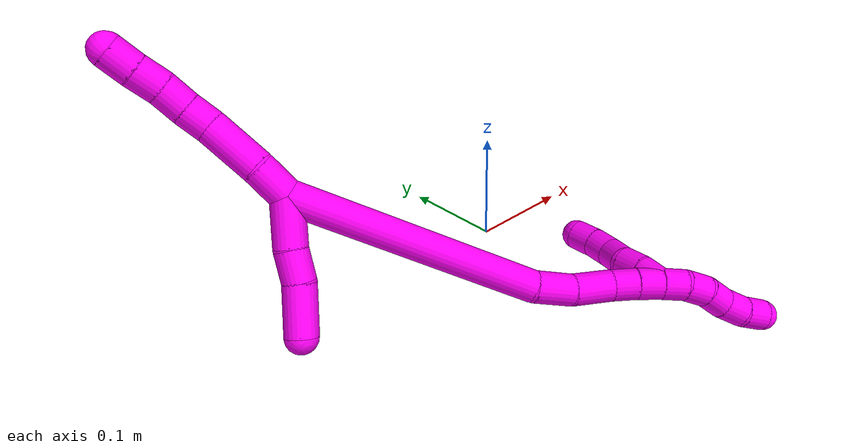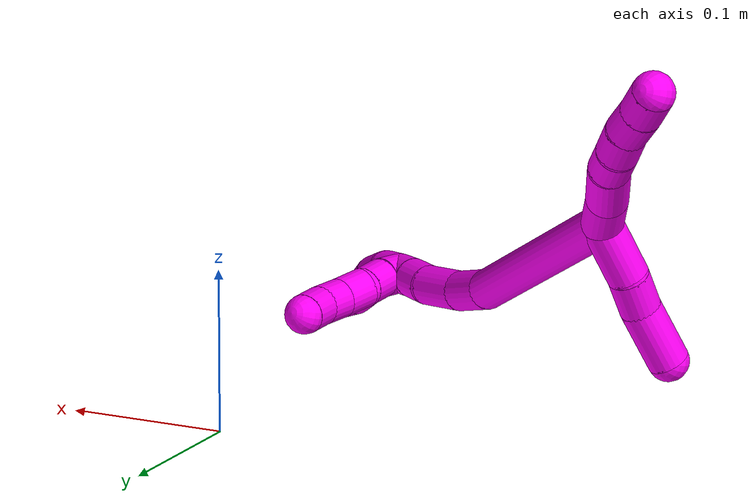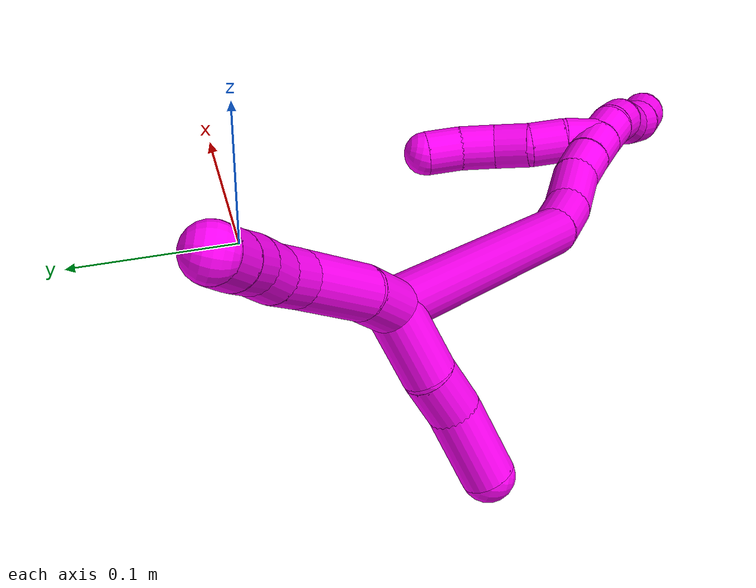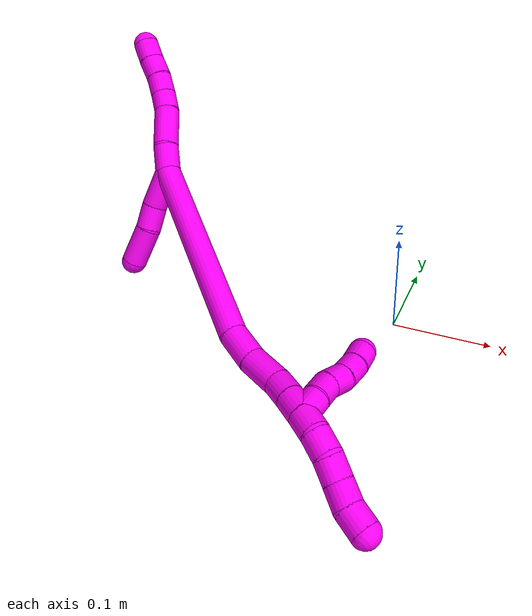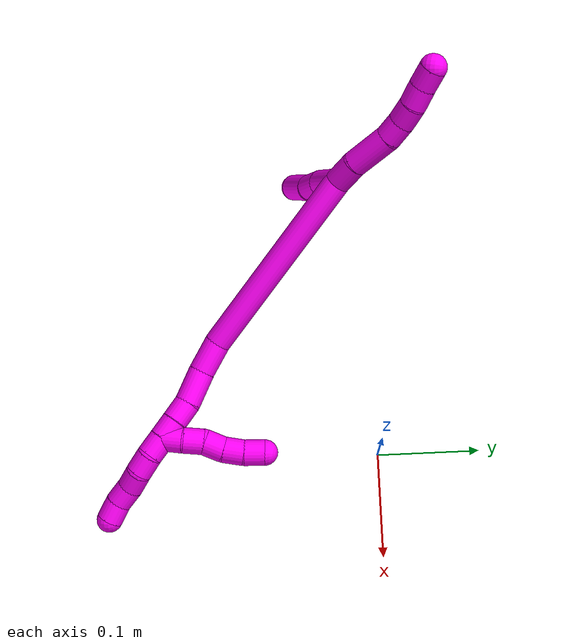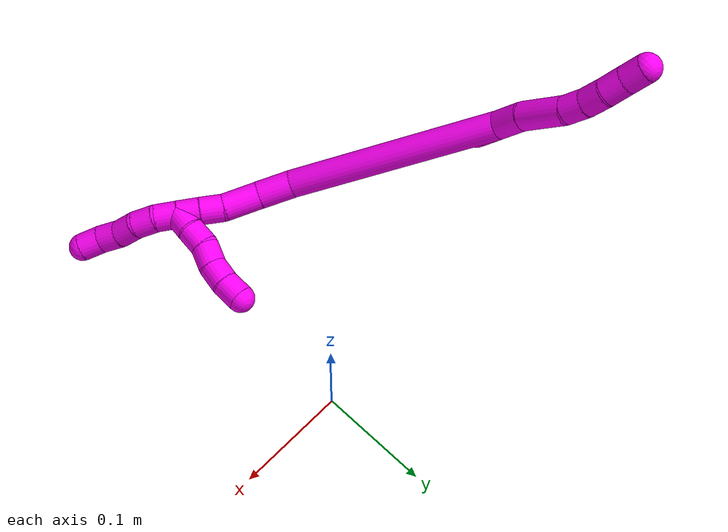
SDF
<sdf version="1.7">
 <world name="default">
  <model name="10">
   <static>0</static>
   <link name="10">
    <collision name="collision-cylinder-e_1_2_8">
     <pose>-0.003026 0.010001 -0.008905 -2.29833 -0.222242 0.487641</pose>
     <geometry><cylinder><radius>0.0125</radius><length>0.027457</length></cylinder></geometry>
     <surface>
      <friction><ode><mu>1.16</mu><mu2>1.16</mu2><slip1>0</slip1><slip2>0</slip2></ode></friction>
      <contact><ode><kp>1e+06</kp><kd>1</kd><max_vel>0</max_vel><min_depth>0.001</min_depth></ode></contact>
     </surface>
    </collision>
    <visual name="visual-cylinder-e_1_2_8">
     <pose>-0.003026 0.010001 -0.008905 -2.29833 -0.222242 0.487641</pose>
     <geometry><cylinder><radius>0.0125</radius><length>0.027457</length></cylinder></geometry>
     <material><ambient>1 0 0.964706 1</ambient></material>
    </visual>
    <collision name="collision-cylinder-e_2_8_9">
     <pose>-0.012007 0.032497 -0.033611 -2.47246 -0.287428 0.788916</pose>
     <geometry><cylinder><radius>0.0125</radius><length>0.042011</length></cylinder></geometry>
     <surface>
      <friction><ode><mu>1.16</mu><mu2>1.16</mu2><slip1>0</slip1><slip2>0</slip2></ode></friction>
      <contact><ode><kp>1e+06</kp><kd>1</kd><max_vel>0</max_vel><min_depth>0.001</min_depth></ode></contact>
     </surface>
    </collision>
    <visual name="visual-cylinder-e_2_8_9">
     <pose>-0.012007 0.032497 -0.033611 -2.47246 -0.287428 0.788916</pose>
     <geometry><cylinder><radius>0.0125</radius><length>0.042011</length></cylinder></geometry>
     <material><ambient>1 0 0.964706 1</ambient></material>
    </visual>
    <collision name="collision-cylinder-e_3_9_10">
     <pose>-0.021575 0.052067 -0.05553 -2.2838 -0.368596 0.774169</pose>
     <geometry><cylinder><radius>0.0125</radius><length>0.020055</length></cylinder></geometry>
     <surface>
      <friction><ode><mu>1.16</mu><mu2>1.16</mu2><slip1>0</slip1><slip2>0</slip2></ode></friction>
      <contact><ode><kp>1e+06</kp><kd>1</kd><max_vel>0</max_vel><min_depth>0.001</min_depth></ode></contact>
     </surface>
    </collision>
    <visual name="visual-cylinder-e_3_9_10">
     <pose>-0.021575 0.052067 -0.05553 -2.2838 -0.368596 0.774169</pose>
     <geometry><cylinder><radius>0.0125</radius><length>0.020055</length></cylinder></geometry>
     <material><ambient>1 0 0.964706 1</ambient></material>
    </visual>
    <collision name="collision-cylinder-e_4_10_11">
     <pose>-0.028052 0.06725 -0.066989 -2.15329 -0.28687 0.523855</pose>
     <geometry><cylinder><radius>0.0125</radius><length>0.020244</length></cylinder></geometry>
     <surface>
      <friction><ode><mu>1.16</mu><mu2>1.16</mu2><slip1>0</slip1><slip2>0</slip2></ode></friction>
      <contact><ode><kp>1e+06</kp><kd>1</kd><max_vel>0</max_vel><min_depth>0.001</min_depth></ode></contact>
     </surface>
    </collision>
    <visual name="visual-cylinder-e_4_10_11">
     <pose>-0.028052 0.06725 -0.066989 -2.15329 -0.28687 0.523855</pose>
     <geometry><cylinder><radius>0.0125</radius><length>0.020244</length></cylinder></geometry>
     <material><ambient>1 0 0.964706 1</ambient></material>
    </visual>
    <collision name="collision-cylinder-e_5_11_12">
     <pose>-0.03496 0.083463 -0.076734 -2.06859 -0.41316 0.677632</pose>
     <geometry><cylinder><radius>0.0125</radius><length>0.020145</length></cylinder></geometry>
     <surface>
      <friction><ode><mu>1.16</mu><mu2>1.16</mu2><slip1>0</slip1><slip2>0</slip2></ode></friction>
      <contact><ode><kp>1e+06</kp><kd>1</kd><max_vel>0</max_vel><min_depth>0.001</min_depth></ode></contact>
     </surface>
    </collision>
    <visual name="visual-cylinder-e_5_11_12">
     <pose>-0.03496 0.083463 -0.076734 -2.06859 -0.41316 0.677632</pose>
     <geometry><cylinder><radius>0.0125</radius><length>0.020145</length></cylinder></geometry>
     <material><ambient>1 0 0.964706 1</ambient></material>
    </visual>
    <collision name="collision-cylinder-e_6_12_6">
     <pose>-0.042443 0.099718 -0.085895 -2.09904 -0.34948 0.596507</pose>
     <geometry><cylinder><radius>0.0125</radius><length>0.020088</length></cylinder></geometry>
     <surface>
      <friction><ode><mu>1.16</mu><mu2>1.16</mu2><slip1>0</slip1><slip2>0</slip2></ode></friction>
      <contact><ode><kp>1e+06</kp><kd>1</kd><max_vel>0</max_vel><min_depth>0.001</min_depth></ode></contact>
     </surface>
    </collision>
    <visual name="visual-cylinder-e_6_12_6">
     <pose>-0.042443 0.099718 -0.085895 -2.09904 -0.34948 0.596507</pose>
     <geometry><cylinder><radius>0.0125</radius><length>0.020088</length></cylinder></geometry>
     <material><ambient>1 0 0.964706 1</ambient></material>
    </visual>
    <collision name="collision-cylinder-e_1_2_13">
     <pose>-0.00881 -0.011218 0.011889 0.756402 -0.494351 -0.199852</pose>
     <geometry><cylinder><radius>0.0125</radius><length>0.037139</length></cylinder></geometry>
     <surface>
      <friction><ode><mu>1.16</mu><mu2>1.16</mu2><slip1>0</slip1><slip2>0</slip2></ode></friction>
      <contact><ode><kp>1e+06</kp><kd>1</kd><max_vel>0</max_vel><min_depth>0.001</min_depth></ode></contact>
     </surface>
    </collision>
    <visual name="visual-cylinder-e_1_2_13">
     <pose>-0.00881 -0.011218 0.011889 0.756402 -0.494351 -0.199852</pose>
     <geometry><cylinder><radius>0.0125</radius><length>0.037139</length></cylinder></geometry>
     <material><ambient>1 0 0.964706 1</ambient></material>
    </visual>
    <collision name="collision-cylinder-e_2_13_14">
     <pose>-0.021371 -0.030521 0.031985 0.777827 -0.314713 -0.129857</pose>
     <geometry><cylinder><radius>0.0125</radius><length>0.024232</length></cylinder></geometry>
     <surface>
      <friction><ode><mu>1.16</mu><mu2>1.16</mu2><slip1>0</slip1><slip2>0</slip2></ode></friction>
      <contact><ode><kp>1e+06</kp><kd>1</kd><max_vel>0</max_vel><min_depth>0.001</min_depth></ode></contact>
     </surface>
    </collision>
    <visual name="visual-cylinder-e_2_13_14">
     <pose>-0.021371 -0.030521 0.031985 0.777827 -0.314713 -0.129857</pose>
     <geometry><cylinder><radius>0.0125</radius><length>0.024232</length></cylinder></geometry>
     <material><ambient>1 0 0.964706 1</ambient></material>
    </visual>
    <collision name="collision-cylinder-e_3_14_5">
     <pose>-0.034738 -0.050048 0.052426 0.751996 -0.521178 -0.209766</pose>
     <geometry><cylinder><radius>0.0125</radius><length>0.03863</length></cylinder></geometry>
     <surface>
      <friction><ode><mu>1.16</mu><mu2>1.16</mu2><slip1>0</slip1><slip2>0</slip2></ode></friction>
      <contact><ode><kp>1e+06</kp><kd>1</kd><max_vel>0</max_vel><min_depth>0.001</min_depth></ode></contact>
     </surface>
    </collision>
    <visual name="visual-cylinder-e_3_14_5">
     <pose>-0.034738 -0.050048 0.052426 0.751996 -0.521178 -0.209766</pose>
     <geometry><cylinder><radius>0.0125</radius><length>0.03863</length></cylinder></geometry>
     <material><ambient>1 0 0.964706 1</ambient></material>
    </visual>
    <collision name="collision-cylinder-e_1_2_15">
     <pose>0.058609 -0.056602 0.052497 0.823 0.649355 0.291699</pose>
     <geometry><cylinder><radius>0.0125</radius><length>0.193853</length></cylinder></geometry>
     <surface>
      <friction><ode><mu>1.16</mu><mu2>1.16</mu2><slip1>0</slip1><slip2>0</slip2></ode></friction>
      <contact><ode><kp>1e+06</kp><kd>1</kd><max_vel>0</max_vel><min_depth>0.001</min_depth></ode></contact>
     </surface>
    </collision>
    <visual name="visual-cylinder-e_1_2_15">
     <pose>0.058609 -0.056602 0.052497 0.823 0.649355 0.291699</pose>
     <geometry><cylinder><radius>0.0125</radius><length>0.193853</length></cylinder></geometry>
     <material><ambient>1 0 0.964706 1</ambient></material>
    </visual>
    <collision name="collision-cylinder-e_2_15_16">
     <pose>0.129508 -0.121358 0.110938 0.940968 0.883402 0.472007</pose>
     <geometry><cylinder><radius>0.0125</radius><length>0.031805</length></cylinder></geometry>
     <surface>
      <friction><ode><mu>1.16</mu><mu2>1.16</mu2><slip1>0</slip1><slip2>0</slip2></ode></friction>
      <contact><ode><kp>1e+06</kp><kd>1</kd><max_vel>0</max_vel><min_depth>0.001</min_depth></ode></contact>
     </surface>
    </collision>
    <visual name="visual-cylinder-e_2_15_16">
     <pose>0.129508 -0.121358 0.110938 0.940968 0.883402 0.472007</pose>
     <geometry><cylinder><radius>0.0125</radius><length>0.031805</length></cylinder></geometry>
     <material><ambient>1 0 0.964706 1</ambient></material>
    </visual>
    <collision name="collision-cylinder-e_3_16_17">
     <pose>0.156422 -0.13643 0.121004 1.03337 1.06739 0.64781</pose>
     <geometry><cylinder><radius>0.0125</radius><length>0.033386</length></cylinder></geometry>
     <surface>
      <friction><ode><mu>1.16</mu><mu2>1.16</mu2><slip1>0</slip1><slip2>0</slip2></ode></friction>
      <contact><ode><kp>1e+06</kp><kd>1</kd><max_vel>0</max_vel><min_depth>0.001</min_depth></ode></contact>
     </surface>
    </collision>
    <visual name="visual-cylinder-e_3_16_17">
     <pose>0.156422 -0.13643 0.121004 1.03337 1.06739 0.64781</pose>
     <geometry><cylinder><radius>0.0125</radius><length>0.033386</length></cylinder></geometry>
     <material><ambient>1 0 0.964706 1</ambient></material>
    </visual>
    <collision name="collision-cylinder-e_4_17_18">
     <pose>0.180141 -0.146287 0.129341 0.608954 1.05659 0.362778</pose>
     <geometry><cylinder><radius>0.0125</radius><length>0.020895</length></cylinder></geometry>
     <surface>
      <friction><ode><mu>1.16</mu><mu2>1.16</mu2><slip1>0</slip1><slip2>0</slip2></ode></friction>
      <contact><ode><kp>1e+06</kp><kd>1</kd><max_vel>0</max_vel><min_depth>0.001</min_depth></ode></contact>
     </surface>
    </collision>
    <visual name="visual-cylinder-e_4_17_18">
     <pose>0.180141 -0.146287 0.129341 0.608954 1.05659 0.362778</pose>
     <geometry><cylinder><radius>0.0125</radius><length>0.020895</length></cylinder></geometry>
     <material><ambient>1 0 0.964706 1</ambient></material>
    </visual>
    <collision name="collision-cylinder-e_5_18_1">
     <pose>0.197665 -0.15255 0.137861 0.657503 0.997686 0.367504</pose>
     <geometry><cylinder><radius>0.0125</radius><length>0.020061</length></cylinder></geometry>
     <surface>
      <friction><ode><mu>1.16</mu><mu2>1.16</mu2><slip1>0</slip1><slip2>0</slip2></ode></friction>
      <contact><ode><kp>1e+06</kp><kd>1</kd><max_vel>0</max_vel><min_depth>0.001</min_depth></ode></contact>
     </surface>
    </collision>
    <visual name="visual-cylinder-e_5_18_1">
     <pose>0.197665 -0.15255 0.137861 0.657503 0.997686 0.367504</pose>
     <geometry><cylinder><radius>0.0125</radius><length>0.020061</length></cylinder></geometry>
     <material><ambient>1 0 0.964706 1</ambient></material>
    </visual>
    <collision name="collision-cylinder-e_1_1_19">
     <pose>0.20472 -0.157356 0.132373 2.99149 -0.137752 -1.48472</pose>
     <geometry><cylinder><radius>0.0125</radius><length>0.02</length></cylinder></geometry>
     <surface>
      <friction><ode><mu>1.16</mu><mu2>1.16</mu2><slip1>0</slip1><slip2>0</slip2></ode></friction>
      <contact><ode><kp>1e+06</kp><kd>1</kd><max_vel>0</max_vel><min_depth>0.001</min_depth></ode></contact>
     </surface>
    </collision>
    <visual name="visual-cylinder-e_1_1_19">
     <pose>0.20472 -0.157356 0.132373 2.99149 -0.137752 -1.48472</pose>
     <geometry><cylinder><radius>0.0125</radius><length>0.02</length></cylinder></geometry>
     <material><ambient>1 0 0.964706 1</ambient></material>
    </visual>
    <collision name="collision-cylinder-e_2_19_20">
     <pose>0.200904 -0.161333 0.113208 2.88127 -0.246707 -1.51651</pose>
     <geometry><cylinder><radius>0.0125</radius><length>0.02</length></cylinder></geometry>
     <surface>
      <friction><ode><mu>1.16</mu><mu2>1.16</mu2><slip1>0</slip1><slip2>0</slip2></ode></friction>
      <contact><ode><kp>1e+06</kp><kd>1</kd><max_vel>0</max_vel><min_depth>0.001</min_depth></ode></contact>
     </surface>
    </collision>
    <visual name="visual-cylinder-e_2_19_20">
     <pose>0.200904 -0.161333 0.113208 2.88127 -0.246707 -1.51651</pose>
     <geometry><cylinder><radius>0.0125</radius><length>0.02</length></cylinder></geometry>
     <material><ambient>1 0 0.964706 1</ambient></material>
    </visual>
    <collision name="collision-cylinder-e_3_20_21">
     <pose>0.198426 -0.168323 0.094904 2.67553 -0.003612 -0.01522</pose>
     <geometry><cylinder><radius>0.0125</radius><length>0.02</length></cylinder></geometry>
     <surface>
      <friction><ode><mu>1.16</mu><mu2>1.16</mu2><slip1>0</slip1><slip2>0</slip2></ode></friction>
      <contact><ode><kp>1e+06</kp><kd>1</kd><max_vel>0</max_vel><min_depth>0.001</min_depth></ode></contact>
     </surface>
    </collision>
    <visual name="visual-cylinder-e_3_20_21">
     <pose>0.198426 -0.168323 0.094904 2.67553 -0.003612 -0.01522</pose>
     <geometry><cylinder><radius>0.0125</radius><length>0.02</length></cylinder></geometry>
     <material><ambient>1 0 0.964706 1</ambient></material>
    </visual>
    <collision name="collision-cylinder-e_4_21_22">
     <pose>0.196928 -0.175277 0.076389 2.8902 -0.146723 -1.05357</pose>
     <geometry><cylinder><radius>0.0125</radius><length>0.02</length></cylinder></geometry>
     <surface>
      <friction><ode><mu>1.16</mu><mu2>1.16</mu2><slip1>0</slip1><slip2>0</slip2></ode></friction>
      <contact><ode><kp>1e+06</kp><kd>1</kd><max_vel>0</max_vel><min_depth>0.001</min_depth></ode></contact>
     </surface>
    </collision>
    <visual name="visual-cylinder-e_4_21_22">
     <pose>0.196928 -0.175277 0.076389 2.8902 -0.146723 -1.05357</pose>
     <geometry><cylinder><radius>0.0125</radius><length>0.02</length></cylinder></geometry>
     <material><ambient>1 0 0.964706 1</ambient></material>
    </visual>
    <collision name="collision-cylinder-e_5_22_4">
     <pose>0.192548 -0.179445 0.057397 2.96213 -0.296136 -2.05604</pose>
     <geometry><cylinder><radius>0.0125</radius><length>0.02</length></cylinder></geometry>
     <surface>
      <friction><ode><mu>1.16</mu><mu2>1.16</mu2><slip1>0</slip1><slip2>0</slip2></ode></friction>
      <contact><ode><kp>1e+06</kp><kd>1</kd><max_vel>0</max_vel><min_depth>0.001</min_depth></ode></contact>
     </surface>
    </collision>
    <visual name="visual-cylinder-e_5_22_4">
     <pose>0.192548 -0.179445 0.057397 2.96213 -0.296136 -2.05604</pose>
     <geometry><cylinder><radius>0.0125</radius><length>0.02</length></cylinder></geometry>
     <material><ambient>1 0 0.964706 1</ambient></material>
    </visual>
    <collision name="collision-cylinder-e_1_1_23">
     <pose>0.214198 -0.159566 0.146714 0.681918 0.945009 0.358808</pose>
     <geometry><cylinder><radius>0.0125</radius><length>0.02</length></cylinder></geometry>
     <surface>
      <friction><ode><mu>1.16</mu><mu2>1.16</mu2><slip1>0</slip1><slip2>0</slip2></ode></friction>
      <contact><ode><kp>1e+06</kp><kd>1</kd><max_vel>0</max_vel><min_depth>0.001</min_depth></ode></contact>
     </surface>
    </collision>
    <visual name="visual-cylinder-e_1_1_23">
     <pose>0.214198 -0.159566 0.146714 0.681918 0.945009 0.358808</pose>
     <geometry><cylinder><radius>0.0125</radius><length>0.02</length></cylinder></geometry>
     <material><ambient>1 0 0.964706 1</ambient></material>
    </visual>
    <collision name="collision-cylinder-e_2_23_24">
     <pose>0.228915 -0.16909 0.15598 0.890542 0.722441 0.356764</pose>
     <geometry><cylinder><radius>0.0125</radius><length>0.02</length></cylinder></geometry>
     <surface>
      <friction><ode><mu>1.16</mu><mu2>1.16</mu2><slip1>0</slip1><slip2>0</slip2></ode></friction>
      <contact><ode><kp>1e+06</kp><kd>1</kd><max_vel>0</max_vel><min_depth>0.001</min_depth></ode></contact>
     </surface>
    </collision>
    <visual name="visual-cylinder-e_2_23_24">
     <pose>0.228915 -0.16909 0.15598 0.890542 0.722441 0.356764</pose>
     <geometry><cylinder><radius>0.0125</radius><length>0.02</length></cylinder></geometry>
     <material><ambient>1 0 0.964706 1</ambient></material>
    </visual>
    <collision name="collision-cylinder-e_3_24_25">
     <pose>0.239858 -0.182535 0.165524 1.00587 0.447869 0.249286</pose>
     <geometry><cylinder><radius>0.0125</radius><length>0.02</length></cylinder></geometry>
     <surface>
      <friction><ode><mu>1.16</mu><mu2>1.16</mu2><slip1>0</slip1><slip2>0</slip2></ode></friction>
      <contact><ode><kp>1e+06</kp><kd>1</kd><max_vel>0</max_vel><min_depth>0.001</min_depth></ode></contact>
     </surface>
    </collision>
    <visual name="visual-cylinder-e_3_24_25">
     <pose>0.239858 -0.182535 0.165524 1.00587 0.447869 0.249286</pose>
     <geometry><cylinder><radius>0.0125</radius><length>0.02</length></cylinder></geometry>
     <material><ambient>1 0 0.964706 1</ambient></material>
    </visual>
    <collision name="collision-cylinder-e_4_25_26">
     <pose>0.249895 -0.19616 0.175944 0.82132 0.607283 0.271184</pose>
     <geometry><cylinder><radius>0.0125</radius><length>0.02</length></cylinder></geometry>
     <surface>
      <friction><ode><mu>1.16</mu><mu2>1.16</mu2><slip1>0</slip1><slip2>0</slip2></ode></friction>
      <contact><ode><kp>1e+06</kp><kd>1</kd><max_vel>0</max_vel><min_depth>0.001</min_depth></ode></contact>
     </surface>
    </collision>
    <visual name="visual-cylinder-e_4_25_26">
     <pose>0.249895 -0.19616 0.175944 0.82132 0.607283 0.271184</pose>
     <geometry><cylinder><radius>0.0125</radius><length>0.02</length></cylinder></geometry>
     <material><ambient>1 0 0.964706 1</ambient></material>
    </visual>
    <collision name="collision-cylinder-e_5_26_3">
     <pose>0.262796 -0.208042 0.185249 1.00708 0.803097 0.459587</pose>
     <geometry><cylinder><radius>0.0125</radius><length>0.02</length></cylinder></geometry>
     <surface>
      <friction><ode><mu>1.16</mu><mu2>1.16</mu2><slip1>0</slip1><slip2>0</slip2></ode></friction>
      <contact><ode><kp>1e+06</kp><kd>1</kd><max_vel>0</max_vel><min_depth>0.001</min_depth></ode></contact>
     </surface>
    </collision>
    <visual name="visual-cylinder-e_5_26_3">
     <pose>0.262796 -0.208042 0.185249 1.00708 0.803097 0.459587</pose>
     <geometry><cylinder><radius>0.0125</radius><length>0.02</length></cylinder></geometry>
     <material><ambient>1 0 0.964706 1</ambient></material>
    </visual>
    <collision name="collision-sphere-3">
     <pose>0.269991 -0.213912 0.18896 0 -0 0</pose>
     <geometry><sphere><radius>0.0125</radius></sphere></geometry>
     <surface>
      <friction><ode><mu>1.16</mu><mu2>1.16</mu2><slip1>0</slip1><slip2>0</slip2></ode></friction>
      <contact><ode><kp>1e+06</kp><kd>1</kd><max_vel>0</max_vel><min_depth>0.001</min_depth></ode></contact>
     </surface>
    </collision>
    <visual name="visual-sphere-3">
     <pose>0.269991 -0.213912 0.18896 0 -0 0</pose>
     <geometry><sphere><radius>0.0125</radius></sphere></geometry>
     <material><ambient>1 0 0.964706 1</ambient></material>
    </visual>
    <collision name="collision-sphere-26">
     <pose>0.255601 -0.202172 0.181539 0 -0 0</pose>
     <geometry><sphere><radius>0.0125</radius></sphere></geometry>
     <surface>
      <friction><ode><mu>1.16</mu><mu2>1.16</mu2><slip1>0</slip1><slip2>0</slip2></ode></friction>
      <contact><ode><kp>1e+06</kp><kd>1</kd><max_vel>0</max_vel><min_depth>0.001</min_depth></ode></contact>
     </surface>
    </collision>
    <visual name="visual-sphere-26">
     <pose>0.255601 -0.202172 0.181539 0 -0 0</pose>
     <geometry><sphere><radius>0.0125</radius></sphere></geometry>
     <material><ambient>1 0 0.964706 1</ambient></material>
    </visual>
    <collision name="collision-sphere-25">
     <pose>0.244188 -0.190149 0.17035 0 -0 0</pose>
     <geometry><sphere><radius>0.0125</radius></sphere></geometry>
     <surface>
      <friction><ode><mu>1.16</mu><mu2>1.16</mu2><slip1>0</slip1><slip2>0</slip2></ode></friction>
      <contact><ode><kp>1e+06</kp><kd>1</kd><max_vel>0</max_vel><min_depth>0.001</min_depth></ode></contact>
     </surface>
    </collision>
    <visual name="visual-sphere-25">
     <pose>0.244188 -0.190149 0.17035 0 -0 0</pose>
     <geometry><sphere><radius>0.0125</radius></sphere></geometry>
     <material><ambient>1 0 0.964706 1</ambient></material>
    </visual>
    <collision name="collision-sphere-24">
     <pose>0.235527 -0.174922 0.160699 0 -0 0</pose>
     <geometry><sphere><radius>0.0125</radius></sphere></geometry>
     <surface>
      <friction><ode><mu>1.16</mu><mu2>1.16</mu2><slip1>0</slip1><slip2>0</slip2></ode></friction>
      <contact><ode><kp>1e+06</kp><kd>1</kd><max_vel>0</max_vel><min_depth>0.001</min_depth></ode></contact>
     </surface>
    </collision>
    <visual name="visual-sphere-24">
     <pose>0.235527 -0.174922 0.160699 0 -0 0</pose>
     <geometry><sphere><radius>0.0125</radius></sphere></geometry>
     <material><ambient>1 0 0.964706 1</ambient></material>
    </visual>
    <collision name="collision-sphere-23">
     <pose>0.222303 -0.163258 0.151261 0 -0 0</pose>
     <geometry><sphere><radius>0.0125</radius></sphere></geometry>
     <surface>
      <friction><ode><mu>1.16</mu><mu2>1.16</mu2><slip1>0</slip1><slip2>0</slip2></ode></friction>
      <contact><ode><kp>1e+06</kp><kd>1</kd><max_vel>0</max_vel><min_depth>0.001</min_depth></ode></contact>
     </surface>
    </collision>
    <visual name="visual-sphere-23">
     <pose>0.222303 -0.163258 0.151261 0 -0 0</pose>
     <geometry><sphere><radius>0.0125</radius></sphere></geometry>
     <material><ambient>1 0 0.964706 1</ambient></material>
    </visual>
    <collision name="collision-sphere-4">
     <pose>0.18963 -0.181153 0.047986 0 -0 0</pose>
     <geometry><sphere><radius>0.0125</radius></sphere></geometry>
     <surface>
      <friction><ode><mu>1.16</mu><mu2>1.16</mu2><slip1>0</slip1><slip2>0</slip2></ode></friction>
      <contact><ode><kp>1e+06</kp><kd>1</kd><max_vel>0</max_vel><min_depth>0.001</min_depth></ode></contact>
     </surface>
    </collision>
    <visual name="visual-sphere-4">
     <pose>0.18963 -0.181153 0.047986 0 -0 0</pose>
     <geometry><sphere><radius>0.0125</radius></sphere></geometry>
     <material><ambient>1 0 0.964706 1</ambient></material>
    </visual>
    <collision name="collision-sphere-22">
     <pose>0.195466 -0.177738 0.066808 0 -0 0</pose>
     <geometry><sphere><radius>0.0125</radius></sphere></geometry>
     <surface>
      <friction><ode><mu>1.16</mu><mu2>1.16</mu2><slip1>0</slip1><slip2>0</slip2></ode></friction>
      <contact><ode><kp>1e+06</kp><kd>1</kd><max_vel>0</max_vel><min_depth>0.001</min_depth></ode></contact>
     </surface>
    </collision>
    <visual name="visual-sphere-22">
     <pose>0.195466 -0.177738 0.066808 0 -0 0</pose>
     <geometry><sphere><radius>0.0125</radius></sphere></geometry>
     <material><ambient>1 0 0.964706 1</ambient></material>
    </visual>
    <collision name="collision-sphere-21">
     <pose>0.19839 -0.172816 0.085971 0 -0 0</pose>
     <geometry><sphere><radius>0.0125</radius></sphere></geometry>
     <surface>
      <friction><ode><mu>1.16</mu><mu2>1.16</mu2><slip1>0</slip1><slip2>0</slip2></ode></friction>
      <contact><ode><kp>1e+06</kp><kd>1</kd><max_vel>0</max_vel><min_depth>0.001</min_depth></ode></contact>
     </surface>
    </collision>
    <visual name="visual-sphere-21">
     <pose>0.19839 -0.172816 0.085971 0 -0 0</pose>
     <geometry><sphere><radius>0.0125</radius></sphere></geometry>
     <material><ambient>1 0 0.964706 1</ambient></material>
    </visual>
    <collision name="collision-sphere-20">
     <pose>0.198462 -0.163829 0.103838 0 -0 0</pose>
     <geometry><sphere><radius>0.0125</radius></sphere></geometry>
     <surface>
      <friction><ode><mu>1.16</mu><mu2>1.16</mu2><slip1>0</slip1><slip2>0</slip2></ode></friction>
      <contact><ode><kp>1e+06</kp><kd>1</kd><max_vel>0</max_vel><min_depth>0.001</min_depth></ode></contact>
     </surface>
    </collision>
    <visual name="visual-sphere-20">
     <pose>0.198462 -0.163829 0.103838 0 -0 0</pose>
     <geometry><sphere><radius>0.0125</radius></sphere></geometry>
     <material><ambient>1 0 0.964706 1</ambient></material>
    </visual>
    <collision name="collision-sphere-12">
     <pose>-0.039004 0.091568 -0.081139 0 -0 0</pose>
     <geometry><sphere><radius>0.0125</radius></sphere></geometry>
     <surface>
      <friction><ode><mu>1.16</mu><mu2>1.16</mu2><slip1>0</slip1><slip2>0</slip2></ode></friction>
      <contact><ode><kp>1e+06</kp><kd>1</kd><max_vel>0</max_vel><min_depth>0.001</min_depth></ode></contact>
     </surface>
    </collision>
    <visual name="visual-sphere-12">
     <pose>-0.039004 0.091568 -0.081139 0 -0 0</pose>
     <geometry><sphere><radius>0.0125</radius></sphere></geometry>
     <material><ambient>1 0 0.964706 1</ambient></material>
    </visual>
    <collision name="collision-sphere-11">
     <pose>-0.030916 0.075357 -0.072329 0 -0 0</pose>
     <geometry><sphere><radius>0.0125</radius></sphere></geometry>
     <surface>
      <friction><ode><mu>1.16</mu><mu2>1.16</mu2><slip1>0</slip1><slip2>0</slip2></ode></friction>
      <contact><ode><kp>1e+06</kp><kd>1</kd><max_vel>0</max_vel><min_depth>0.001</min_depth></ode></contact>
     </surface>
    </collision>
    <visual name="visual-sphere-11">
     <pose>-0.030916 0.075357 -0.072329 0 -0 0</pose>
     <geometry><sphere><radius>0.0125</radius></sphere></geometry>
     <material><ambient>1 0 0.964706 1</ambient></material>
    </visual>
    <collision name="collision-sphere-10">
     <pose>-0.025188 0.059143 -0.061648 0 -0 0</pose>
     <geometry><sphere><radius>0.0125</radius></sphere></geometry>
     <surface>
      <friction><ode><mu>1.16</mu><mu2>1.16</mu2><slip1>0</slip1><slip2>0</slip2></ode></friction>
      <contact><ode><kp>1e+06</kp><kd>1</kd><max_vel>0</max_vel><min_depth>0.001</min_depth></ode></contact>
     </surface>
    </collision>
    <visual name="visual-sphere-10">
     <pose>-0.025188 0.059143 -0.061648 0 -0 0</pose>
     <geometry><sphere><radius>0.0125</radius></sphere></geometry>
     <material><ambient>1 0 0.964706 1</ambient></material>
    </visual>
    <collision name="collision-sphere-9">
     <pose>-0.017962 0.044992 -0.049411 0 -0 0</pose>
     <geometry><sphere><radius>0.0125</radius></sphere></geometry>
     <surface>
      <friction><ode><mu>1.16</mu><mu2>1.16</mu2><slip1>0</slip1><slip2>0</slip2></ode></friction>
      <contact><ode><kp>1e+06</kp><kd>1</kd><max_vel>0</max_vel><min_depth>0.001</min_depth></ode></contact>
     </surface>
    </collision>
    <visual name="visual-sphere-9">
     <pose>-0.017962 0.044992 -0.049411 0 -0 0</pose>
     <geometry><sphere><radius>0.0125</radius></sphere></geometry>
     <material><ambient>1 0 0.964706 1</ambient></material>
    </visual>
    <collision name="collision-sphere-2">
     <geometry><sphere><radius>0.0125</radius></sphere></geometry>
     <surface>
      <friction><ode><mu>1.16</mu><mu2>1.16</mu2><slip1>0</slip1><slip2>0</slip2></ode></friction>
      <contact><ode><kp>1e+06</kp><kd>1</kd><max_vel>0</max_vel><min_depth>0.001</min_depth></ode></contact>
     </surface>
    </collision>
    <visual name="visual-sphere-2">
     <geometry><sphere><radius>0.0125</radius></sphere></geometry>
     <material><ambient>1 0 0.964706 1</ambient></material>
    </visual>
    <collision name="collision-sphere-19">
     <pose>0.203347 -0.158837 0.122579 0 -0 0</pose>
     <geometry><sphere><radius>0.0125</radius></sphere></geometry>
     <surface>
      <friction><ode><mu>1.16</mu><mu2>1.16</mu2><slip1>0</slip1><slip2>0</slip2></ode></friction>
      <contact><ode><kp>1e+06</kp><kd>1</kd><max_vel>0</max_vel><min_depth>0.001</min_depth></ode></contact>
     </surface>
    </collision>
    <visual name="visual-sphere-19">
     <pose>0.203347 -0.158837 0.122579 0 -0 0</pose>
     <geometry><sphere><radius>0.0125</radius></sphere></geometry>
     <material><ambient>1 0 0.964706 1</ambient></material>
    </visual>
    <collision name="collision-sphere-8">
     <pose>-0.006052 0.020001 -0.017811 0 -0 0</pose>
     <geometry><sphere><radius>0.0125</radius></sphere></geometry>
     <surface>
      <friction><ode><mu>1.16</mu><mu2>1.16</mu2><slip1>0</slip1><slip2>0</slip2></ode></friction>
      <contact><ode><kp>1e+06</kp><kd>1</kd><max_vel>0</max_vel><min_depth>0.001</min_depth></ode></contact>
     </surface>
    </collision>
    <visual name="visual-sphere-8">
     <pose>-0.006052 0.020001 -0.017811 0 -0 0</pose>
     <geometry><sphere><radius>0.0125</radius></sphere></geometry>
     <material><ambient>1 0 0.964706 1</ambient></material>
    </visual>
    <collision name="collision-sphere-6">
     <pose>-0.045882 0.107869 -0.090651 0 -0 0</pose>
     <geometry><sphere><radius>0.0125</radius></sphere></geometry>
     <surface>
      <friction><ode><mu>1.16</mu><mu2>1.16</mu2><slip1>0</slip1><slip2>0</slip2></ode></friction>
      <contact><ode><kp>1e+06</kp><kd>1</kd><max_vel>0</max_vel><min_depth>0.001</min_depth></ode></contact>
     </surface>
    </collision>
    <visual name="visual-sphere-6">
     <pose>-0.045882 0.107869 -0.090651 0 -0 0</pose>
     <geometry><sphere><radius>0.0125</radius></sphere></geometry>
     <material><ambient>1 0 0.964706 1</ambient></material>
    </visual>
    <collision name="collision-sphere-13">
     <pose>-0.017621 -0.022437 0.023777 0 -0 0</pose>
     <geometry><sphere><radius>0.0125</radius></sphere></geometry>
     <surface>
      <friction><ode><mu>1.16</mu><mu2>1.16</mu2><slip1>0</slip1><slip2>0</slip2></ode></friction>
      <contact><ode><kp>1e+06</kp><kd>1</kd><max_vel>0</max_vel><min_depth>0.001</min_depth></ode></contact>
     </surface>
    </collision>
    <visual name="visual-sphere-13">
     <pose>-0.017621 -0.022437 0.023777 0 -0 0</pose>
     <geometry><sphere><radius>0.0125</radius></sphere></geometry>
     <material><ambient>1 0 0.964706 1</ambient></material>
    </visual>
    <collision name="collision-sphere-14">
     <pose>-0.025122 -0.038606 0.040193 0 -0 0</pose>
     <geometry><sphere><radius>0.0125</radius></sphere></geometry>
     <surface>
      <friction><ode><mu>1.16</mu><mu2>1.16</mu2><slip1>0</slip1><slip2>0</slip2></ode></friction>
      <contact><ode><kp>1e+06</kp><kd>1</kd><max_vel>0</max_vel><min_depth>0.001</min_depth></ode></contact>
     </surface>
    </collision>
    <visual name="visual-sphere-14">
     <pose>-0.025122 -0.038606 0.040193 0 -0 0</pose>
     <geometry><sphere><radius>0.0125</radius></sphere></geometry>
     <material><ambient>1 0 0.964706 1</ambient></material>
    </visual>
    <collision name="collision-sphere-5">
     <pose>-0.044355 -0.06149 0.06466 0 -0 0</pose>
     <geometry><sphere><radius>0.0125</radius></sphere></geometry>
     <surface>
      <friction><ode><mu>1.16</mu><mu2>1.16</mu2><slip1>0</slip1><slip2>0</slip2></ode></friction>
      <contact><ode><kp>1e+06</kp><kd>1</kd><max_vel>0</max_vel><min_depth>0.001</min_depth></ode></contact>
     </surface>
    </collision>
    <visual name="visual-sphere-5">
     <pose>-0.044355 -0.06149 0.06466 0 -0 0</pose>
     <geometry><sphere><radius>0.0125</radius></sphere></geometry>
     <material><ambient>1 0 0.964706 1</ambient></material>
    </visual>
    <collision name="collision-sphere-15">
     <pose>0.117217 -0.113203 0.104995 0 -0 0</pose>
     <geometry><sphere><radius>0.0125</radius></sphere></geometry>
     <surface>
      <friction><ode><mu>1.16</mu><mu2>1.16</mu2><slip1>0</slip1><slip2>0</slip2></ode></friction>
      <contact><ode><kp>1e+06</kp><kd>1</kd><max_vel>0</max_vel><min_depth>0.001</min_depth></ode></contact>
     </surface>
    </collision>
    <visual name="visual-sphere-15">
     <pose>0.117217 -0.113203 0.104995 0 -0 0</pose>
     <geometry><sphere><radius>0.0125</radius></sphere></geometry>
     <material><ambient>1 0 0.964706 1</ambient></material>
    </visual>
    <collision name="collision-sphere-16">
     <pose>0.141799 -0.129512 0.116881 0 -0 0</pose>
     <geometry><sphere><radius>0.0125</radius></sphere></geometry>
     <surface>
      <friction><ode><mu>1.16</mu><mu2>1.16</mu2><slip1>0</slip1><slip2>0</slip2></ode></friction>
      <contact><ode><kp>1e+06</kp><kd>1</kd><max_vel>0</max_vel><min_depth>0.001</min_depth></ode></contact>
     </surface>
    </collision>
    <visual name="visual-sphere-16">
     <pose>0.141799 -0.129512 0.116881 0 -0 0</pose>
     <geometry><sphere><radius>0.0125</radius></sphere></geometry>
     <material><ambient>1 0 0.964706 1</ambient></material>
    </visual>
    <collision name="collision-sphere-17">
     <pose>0.171044 -0.143348 0.125126 0 -0 0</pose>
     <geometry><sphere><radius>0.0125</radius></sphere></geometry>
     <surface>
      <friction><ode><mu>1.16</mu><mu2>1.16</mu2><slip1>0</slip1><slip2>0</slip2></ode></friction>
      <contact><ode><kp>1e+06</kp><kd>1</kd><max_vel>0</max_vel><min_depth>0.001</min_depth></ode></contact>
     </surface>
    </collision>
    <visual name="visual-sphere-17">
     <pose>0.171044 -0.143348 0.125126 0 -0 0</pose>
     <geometry><sphere><radius>0.0125</radius></sphere></geometry>
     <material><ambient>1 0 0.964706 1</ambient></material>
    </visual>
    <collision name="collision-sphere-18">
     <pose>0.189237 -0.149226 0.133556 0 -0 0</pose>
     <geometry><sphere><radius>0.0125</radius></sphere></geometry>
     <surface>
      <friction><ode><mu>1.16</mu><mu2>1.16</mu2><slip1>0</slip1><slip2>0</slip2></ode></friction>
      <contact><ode><kp>1e+06</kp><kd>1</kd><max_vel>0</max_vel><min_depth>0.001</min_depth></ode></contact>
     </surface>
    </collision>
    <visual name="visual-sphere-18">
     <pose>0.189237 -0.149226 0.133556 0 -0 0</pose>
     <geometry><sphere><radius>0.0125</radius></sphere></geometry>
     <material><ambient>1 0 0.964706 1</ambient></material>
    </visual>
    <collision name="collision-sphere-1">
     <pose>0.206093 -0.155874 0.142166 0 -0 0</pose>
     <geometry><sphere><radius>0.0125</radius></sphere></geometry>
     <surface>
      <friction><ode><mu>1.16</mu><mu2>1.16</mu2><slip1>0</slip1><slip2>0</slip2></ode></friction>
      <contact><ode><kp>1e+06</kp><kd>1</kd><max_vel>0</max_vel><min_depth>0.001</min_depth></ode></contact>
     </surface>
    </collision>
    <visual name="visual-sphere-1">
     <pose>0.206093 -0.155874 0.142166 0 -0 0</pose>
     <geometry><sphere><radius>0.0125</radius></sphere></geometry>
     <material><ambient>1 0 0.964706 1</ambient></material>
    </visual>
    <inertial>
     <pose>0.089179 -0.074675 0.060175 0 -0 0</pose>
     <mass>0.75</mass>
     <inertia><ixx>0.000666</ixx><ixy>0</ixy><ixz>0</ixz><iyy>0.00063</iyy><iyz>0</iyz><izz>-1e-06</izz></inertia>
    </inertial>
   </link>
   <pose>-0.233774 -0.030881 0.147393 1.84394 -0.389166 -0.336952</pose>
  </model>
 </world>
</sdf>
